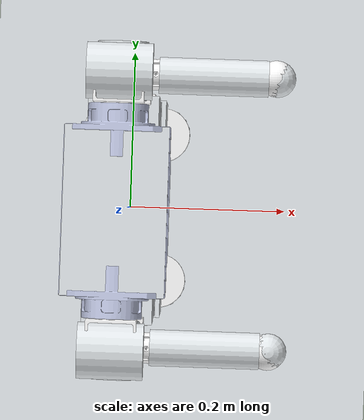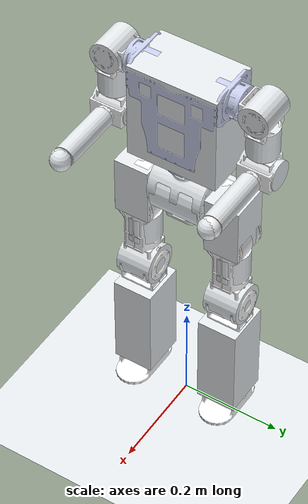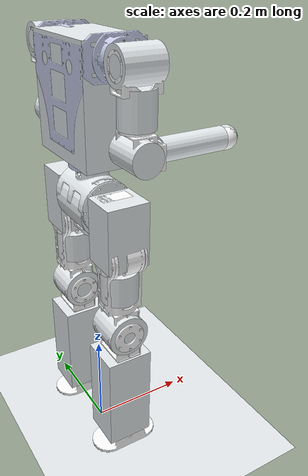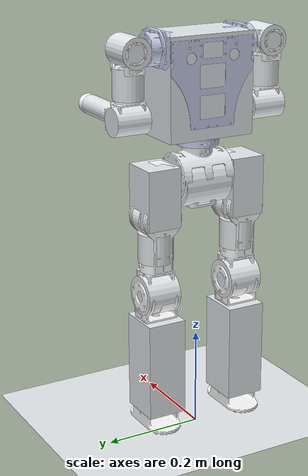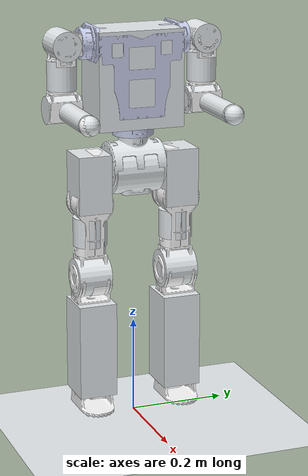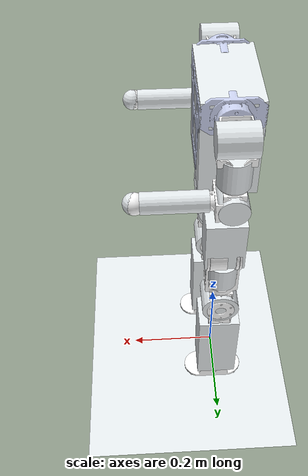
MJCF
<mujoco model="qinglongmini2.0">
    <compiler angle="radian" meshdir="../meshes/"/>
    <size njmax="500" nconmax="1000"/>
    <default>
        <light castshadow="false"/>
        <geom rgba="0.898 0.918 0.929 1"/>
        <default class="visual">
            <geom contype="0" conaffinity="0" group="0" type="mesh"/>
        </default>
        <default class="collision">
            <geom contype="1" conaffinity="1" friction="1.0 0.3 0.3"
                  margin="0" group="1"/>
        </default>
        <!-- Rotor inertia is not specified in the supplied motor manuals. -->
        <joint damping="0.1" frictionloss="0.02"/>
    </default>

    <asset>
        <mesh name="base_link" file="base_link.STL"/>
        <mesh name="right_hip_pitch_link" file="right_hip_pitch_link.STL"/>
        <mesh name="right_hip_roll_link" file="right_hip_roll_link.STL"/>
        <mesh name="right_hip_yaw_link" file="right_hip_yaw_link.STL"/>
        <mesh name="right_knee_link" file="right_knee_link.STL"/>
        <mesh name="right_foot" file="right_foot.STL"/>
        <mesh name="left_hip_pitch_link" file="left_hip_pitch_link.STL"/>
        <mesh name="left_hip_roll_link" file="left_hip_roll_link.STL"/>
        <mesh name="left_hip_yaw_link" file="left_hip_yaw_link.STL"/>
        <mesh name="left_knee_link" file="left_knee_link.STL"/>
        <mesh name="left_foot" file="left_foot.STL"/>
        <mesh name="waist_yaw_link" file="waist_yaw_link.STL"/>
        <mesh name="right_shoulder_pitch_link" file="right_shoulder_pitch_link.STL"/>
        <mesh name="right_shoulder_roll_link" file="right_shoulder_roll_link.STL"/>
        <mesh name="right_shoulder_yaw_link" file="right_shoulder_yaw_link.STL"/>
        <mesh name="right_elbow_link" file="right_elbow_link.STL"/>
        <mesh name="left_shoulder_pitch_link" file="left_shoulder_pitch_link.STL"/>
        <mesh name="left_shoulder_roll_link" file="left_shoulder_roll_link.STL"/>
        <mesh name="left_shoulder_yaw_link" file="left_shoulder_yaw_link.STL"/>
        <mesh name="left_elbow_link" file="left_elbow_link.STL"/>
    </asset>

    <worldbody>
        <!-- Coarse primitive collision bodies; dimensions are intended for later tuning. -->
        <body name="base_link" pos="0.00000000 0.00000000 0.48" quat="1 0 0 0">
            <joint name="floating_base_joint" type="free" limited="false" actuatorfrclimited="false"/>
            <inertial pos="-5.73678996165089E-06 -1.69193884976709E-05 0.058874742378733" quat="1.0 0.0 0.0 0.0"
                      mass="1.6520541" diaginertia="0.0032157 0.0019340 0.0028831"/>
            <geom class="visual" type="mesh" rgba="0.898 0.918 0.929 1" mesh="base_link"/>
            <geom name="base_link_collision" class="collision" type="cylinder" pos="0 0 0.05" size="0.05 0.05" euler="1.570796 0 0"/>
            <body name="right_hip_pitch_link" pos="0 -0.054017 0.059" quat="1.0 0.0 0.0 0.0">
                <joint name="right_hip_pitch_joint" range="-2.2689 2.2689" axis="0 1 0"/>
                <inertial pos="0.00335760201078564 -0.0373080226674996 -0.0624910254096332" quat="1.0 0.0 0.0 0.0"
                          mass="0.5798660" diaginertia="0.0008730 0.0007970 0.0003964"/>
                <geom class="visual" type="mesh" rgba="1 1 1 1" mesh="right_hip_pitch_link"/>
                <geom name="right_hip_pitch_link_collision" class="collision" type="box" pos="0.0 -0.04 -0.03" size="0.04 0.035 0.06"/>
                <body name="right_hip_roll_link" pos="0.00945 -0.04 -0.074" quat="1.0 0.0 0.0 0.0">
                    <joint name="right_hip_roll_joint" range="-1.0472 0.8727" axis="1 0 0"/>
                    <inertial pos="-0.0096013 -1.7563E-07 -0.060983" quat="1.0 0.0 0.0 0.0"
                              mass="0.5591978" diaginertia="0.0009817 0.0011193 0.0004282"/>
                    <geom class="visual" type="mesh" rgba="1 1 1 1" mesh="right_hip_roll_link"/>
                    <geom name="right_hip_roll_link_collision" class="collision" type="cylinder" pos="-0.01 0 -0.06" size="0.035 0.03"/>
                    <body name="right_hip_yaw_link" pos="-0.00945 0 -0.104" quat="1.0 0.0 0.0 0.0">
                        <joint name="right_hip_yaw_joint" range="-0.8727 0.8727" axis="0 0 1"/>
                        <inertial pos="-4.23390510687766E-06 0.00413396977649125 -0.0521520218910281" quat="1.0 0.0 0.0 0.0"
                                  mass="0.5211244" diaginertia="0.0003977 0.0004599 0.0003181"/>
                        <geom class="visual" type="mesh" rgba="1 1 1 1" mesh="right_hip_yaw_link"/>
                        <geom name="right_hip_yaw_link_collision" class="collision" type="cylinder" pos="0 0 -0.054" size="0.04 0.035" euler="1.570796 0 0"/>
                        <body name="right_knee_link" pos="0 0.00945 -0.056" quat="1.0 0.0 0.0 0.0">
                            <joint name="right_knee_joint" range="-0.1745 2.0499" axis="0 1 0"/>
                            <inertial pos="7.14113041347386E-06 -0.00774899527578245 -0.163319540342136" quat="1.0 0.0 0.0 0.0"
                                      mass="0.8775823" diaginertia="0.0076825 0.0076264 0.0006223"/>
                            <geom class="visual" type="mesh" rgba="1 1 1 1" mesh="right_knee_link"/>
                            <geom name="right_knee_link_collision" class="collision" type="box" pos="0 -0.008 -0.15" size="0.045 0.04 0.1"/>
                            <body name="right_foot" pos="0 0 -0.23" quat="1.0 0.0 0.0 0.0">
                                <joint name="right_foot_pitch_joint" range="-1.0472 1.0472" axis="0 1 0"/>
                                <inertial pos="0.00298442847510103 -0.00986247346418476 -0.025627500432694" quat="1.0 0.0 0.0 0.0"
                                          mass="0.251342026054478" diaginertia="0.000238056636333116 0.000301413035110417 0.000331563693288264"/>
                                <geom class="visual" type="mesh" rgba="1 1 1 1" mesh="right_foot"/>
                                <geom name="right_foot1_collision" class="collision" type="capsule" size="0.005" fromto="-0.046583 -0.035 -0.05 0.056583 -0.035 -0.05"/>
                                <geom name="right_foot2_collision" class="collision" type="capsule" size="0.005" fromto="-0.054944 -0.026667 -0.05 0.064944 -0.026667 -0.05"/>
                                <geom name="right_foot3_collision" class="collision" type="capsule" size="0.005" fromto="-0.058819 -0.018333 -0.05 0.068819 -0.018333 -0.05"/>
                                <geom name="right_foot4_collision" class="collision" type="capsule" size="0.005" fromto="-0.06 -0.01 -0.05 0.07 -0.01 -0.05"/>
                                <geom name="right_foot5_collision" class="collision" type="capsule" size="0.005" fromto="-0.058819 -0.001667 -0.05 0.068819 -0.001667 -0.05"/>
                                <geom name="right_foot6_collision" class="collision" type="capsule" size="0.005" fromto="-0.054944 0.006667 -0.05 0.064944 0.006667 -0.05"/>
                                <geom name="right_foot7_collision" class="collision" type="capsule" size="0.005" fromto="-0.046583 0.015 -0.05 0.056583 0.015 -0.05"/>
                                <site name="right_foot" pos="0.005 -0.01 -0.055" size="0.005"/>
                            </body>
                        </body>
                    </body>
                </body>
            </body>
            <body name="left_hip_pitch_link" pos="0 0.053983 0.059" quat="1.0 0.0 0.0 0.0">
                <joint name="left_hip_pitch_joint" range="-2.2689 2.2689" axis="0 1 0"/>
                <inertial pos="0.0033576 0.037308 -0.062491" quat="1.0 0.0 0.0 0.0"
                          mass="0.5798661" diaginertia="0.0008730 0.0007970 0.0003964"/>
                <geom class="visual" type="mesh" rgba="1 1 1 1" mesh="left_hip_pitch_link"/>
                <geom name="left_hip_pitch_link_collision" class="collision" type="box" pos="0.0 0.04 -0.03" size="0.04 0.035 0.06"/>
                <body name="left_hip_roll_link" pos="0.00945 0.04 -0.074" quat="1.0 0.0 0.0 0.0">
                    <joint name="left_hip_roll_joint" range="-0.8727 1.0472" axis="1 0 0"/>
                    <inertial pos="-0.00960126000015139 -1.75627821480395E-07 -0.0609829126488866" quat="1.0 0.0 0.0 0.0"
                              mass="0.5591978" diaginertia="0.0009821 0.0011189 0.0004282"/>
                    <geom class="visual" type="mesh" rgba="1 1 1 1" mesh="left_hip_roll_link"/>
                    <geom name="left_hip_roll_link_collision" class="collision" type="cylinder" pos="-0.01 0 -0.06" size="0.035 0.03"/>
                    <body name="left_hip_yaw_link" pos="-0.00945 0 -0.104" quat="1.0 0.0 0.0 0.0">
                        <joint name="left_hip_yaw_joint" range="-0.8727 0.8727" axis="0 0 1"/>
                        <inertial pos="1.8343574517167E-05 -0.00413396978427791 -0.0521438044149684" quat="1.0 0.0 0.0 0.0"
                                  mass="0.5211244" diaginertia="0.0003977 0.0004599 0.0003181"/>
                        <geom class="visual" type="mesh" rgba="1 1 1 1" mesh="left_hip_yaw_link"/>
                        <geom name="left_hip_yaw_link_collision" class="collision" type="cylinder" pos="0 0 -0.054" size="0.04 0.035" euler="1.570796 0 0"/>
                        <body name="left_knee_link" pos="0 -0.00945 -0.056" quat="1.0 0.0 0.0 0.0">
                            <joint name="left_knee_joint" range="-0.1745 2.0944" axis="0 1 0"/>
                            <inertial pos="6.3236898386887E-06 0.0077489947037703 -0.163324325687469" quat="1.0 0.0 0.0 0.0"
                                      mass="0.8775823" diaginertia="0.0076825 0.0076264 0.0006223"/>
                            <geom class="visual" type="mesh" rgba="1 1 1 1" mesh="left_knee_link"/>
                            <geom name="left_knee_link_collision" class="collision" type="box" pos="0 0.008 -0.15" size="0.045 0.04 0.1"/>
                            <body name="left_foot" pos="0 0 -0.23" quat="1.0 0.0 0.0 0.0">
                                <joint name="left_foot_pitch_joint" range="-1.0472 1.0472" axis="0 1 0"/>
                                <inertial pos="0.00298442754260854 0.00986282632621122 -0.0256275009097112" quat="1.0 0.0 0.0 0.0"
                                          mass="0.251342032302528" diaginertia="0.000238056567309221 0.000301413041828796 0.000331563627961346"/>
                                <geom class="visual" type="mesh" rgba="1 1 1 1" mesh="left_foot"/>
                                <!-- Mirrored rounded seven-strip sole; see right foot. -->
                                <geom name="left_foot1_collision" class="collision" type="capsule" size="0.005" fromto="-0.046583 0.035 -0.05 0.056583 0.035 -0.05"/>
                                <geom name="left_foot2_collision" class="collision" type="capsule" size="0.005" fromto="-0.054944 0.026667 -0.05 0.064944 0.026667 -0.05"/>
                                <geom name="left_foot3_collision" class="collision" type="capsule" size="0.005" fromto="-0.058819 0.018333 -0.05 0.068819 0.018333 -0.05"/>
                                <geom name="left_foot4_collision" class="collision" type="capsule" size="0.005" fromto="-0.06 0.01 -0.05 0.07 0.01 -0.05"/>
                                <geom name="left_foot5_collision" class="collision" type="capsule" size="0.005" fromto="-0.058819 0.001667 -0.05 0.068819 0.001667 -0.05"/>
                                <geom name="left_foot6_collision" class="collision" type="capsule" size="0.005" fromto="-0.054944 -0.006667 -0.05 0.064944 -0.006667 -0.05"/>
                                <geom name="left_foot7_collision" class="collision" type="capsule" size="0.005" fromto="-0.046583 -0.015 -0.05 0.056583 -0.015 -0.05"/>
                                <site name="left_foot" pos="0.005 0.01 -0.055" size="0.005"/>
                            </body>
                        </body>
                    </body>
                </body>
            </body>
            <body name="waist_yaw_link" pos="0 0 0.140558242606161" quat="1.0 0.0 0.0 0.0">
                <joint name="waist_yaw_joint" range="-0.8727 0.8727" axis="0 0 1"/>
                <inertial pos="-0.00048399 -0.0020022 0.10215" quat="1.0 0.0 0.0 0.0"
                          mass="3.6534181" diaginertia="0.0221606 0.0164459 0.0116163"/>
                <geom class="visual" type="mesh" rgba="0.792 0.820 0.933 1" mesh="waist_yaw_link"/>
                <geom name="waist_yaw_link_collision" class="collision" type="box" pos="0 0 0.10" size="0.055 0.09 0.1"/>
                <body name="right_shoulder_pitch_link" pos="0 -0.0881 0.17234" quat="1.0 0.0 0.0 0.0">
                    <joint name="right_shoulder_pitch_joint" range="-2.7925 2.7925" axis="0 1 0"/>
                    <inertial pos="-0.00210427996058867 -0.0585656923115873 -1.85446469039285E-05" quat="1.0 0.0 0.0 0.0"
                              mass="0.2947553" diaginertia="0.0001067 0.0001035 0.0001283"/>
                    <geom class="visual" type="mesh" rgba="1 1 1 1" mesh="right_shoulder_pitch_link"/>
                    <geom name="right_shoulder_pitch_link_collision" class="collision" type="cylinder" pos="0 -0.06 0" size="0.03 0.035" euler="0 1.570796 0"/>
                    <body name="right_shoulder_roll_link" pos="-0.0044996 -0.062176 -0.00015572" quat="1.0 0.0 0.0 0.0">
                        <joint name="right_shoulder_roll_joint" range="-3.2289 0.0873" axis="1 0 0"/>
                        <inertial pos="0.0041115542372811 0.000365350255664781 -0.0578635363052412" quat="1.0 0.0 0.0 0.0"
                                  mass="0.3485680" diaginertia="0.0003275 0.0003715 0.0001563"/>
                        <geom class="visual" type="mesh" rgba="1 1 1 1" mesh="right_shoulder_roll_link"/>
                        <geom name="right_shoulder_roll_link_collision" class="collision" type="cylinder" pos="0.005 0 -0.06" size="0.03 0.03"/>
                        <body name="right_shoulder_yaw_link" pos="0.0044996 0.00026128 -0.094639" quat="1.0 0.0 0.0 0.0">
                            <joint name="right_shoulder_yaw_joint" range="-2.9671 2.9671" axis="0 0 1"/>
                            <inertial pos="-8.56685334881674E-06 -0.00187746646855333 -0.0317422855661479" quat="1.0 0.0 0.0 0.0"
                                      mass="0.2995524" diaginertia="0.0001315 0.0001081 0.0001062"/>
                            <geom class="visual" type="mesh" rgba="1 1 1 1" mesh="right_shoulder_yaw_link"/>
                            <geom name="right_shoulder_yaw_link_collision" class="collision" type="cylinder" pos="0 0 -0.035" size="0.028 0.035" euler="1.570796 0 0"/>
                            <body name="right_elbow_link" pos="-0.00015572 -0.0043849 -0.034624" quat="1.0 0.0 0.0 0.0">
                                <joint name="right_elbow_joint" range="-0.1745 1.9199" axis="0 1 0"/>
                                <inertial pos="0.0786473480273473 0.00380297012793684 -0.000353678677222103" quat="1.0 0.0 0.0 0.0"
                                          mass="0.1977884" diaginertia="0.0000909 0.0008559 0.0009024"/>
                                <geom class="visual" type="mesh" rgba="1 1 1 1" mesh="right_elbow_link"/>
                                <geom name="right_elbow_link_collision" class="collision" type="cylinder" pos="0.1 0.005 0" size="0.02 0.06" euler="0 1.5708 0"/>
                                <geom name="right_elbow_link_collision2" class="collision" type="sphere" pos="0.17 0.005 0" size="0.02"/>
                            </body>
                        </body>
                    </body>
                </body>
                <body name="left_shoulder_pitch_link" pos="0 0.0881 0.17234" quat="1.0 0.0 0.0 0.0">
                    <joint name="left_shoulder_pitch_joint" range="-2.7925 2.7925" axis="0 1 0"/>
                    <inertial pos="-0.00210428325739485 0.0585226139172226 -7.07840754010647E-07" quat="1.0 0.0 0.0 0.0"
                              mass="0.2947554" diaginertia="0.0001066 0.0001035 0.0001282"/>
                    <geom class="visual" type="mesh" rgba="1 1 1 1" mesh="left_shoulder_pitch_link"/>
                    <geom name="left_shoulder_pitch_link_collision" class="collision" type="cylinder" pos="0 0.06 0" size="0.03 0.035" euler="0 1.570796 0"/>
                    <body name="left_shoulder_roll_link" pos="-0.0044996 0.061424 0.00015572" quat="1.0 0.0 0.0 0.0">
                        <joint name="left_shoulder_roll_joint" range="-0.0873 3.2289" axis="1 0 0"/>
                        <inertial pos="0.00412098513032669 0.000363759745852399 -0.0581749827430238" quat="1.0 0.0 0.0 0.0"
                                  mass="0.3485680" diaginertia="0.0003276 0.0003714 0.0001563"/>
                        <geom class="visual" type="mesh" rgba="1 1 1 1" mesh="left_shoulder_roll_link"/>
                        <geom name="left_shoulder_roll_link_collision" class="collision" type="cylinder" pos="0.005 0 -0.06" size="0.03 0.03"/>
                        <body name="left_shoulder_yaw_link" pos="0.0044996 0.00049061 -0.09495" quat="1.0 0.0 0.0 0.0">
                            <joint name="left_shoulder_yaw_joint" range="-2.9671 2.9671" axis="0 0 1"/>
                            <inertial pos="1.99648881145653E-05 0.00187745723766075 -0.0317708173076113" quat="1.0 0.0 0.0 0.0"
                                      mass="0.2995524" diaginertia="0.0001317 0.0001081 0.0001061"/>
                            <geom class="visual" type="mesh" rgba="1 1 1 1" mesh="left_shoulder_yaw_link"/>
                            <geom name="left_shoulder_yaw_link_collision" class="collision" type="cylinder" pos="0 0 -0.035" size="0.028 0.035" euler="1.570796 0 0"/>
                            <body name="left_elbow_link" pos="0.00037594 0.0043849 -0.035156" quat="1.0 0.0 0.0 0.0">
                                <joint name="left_elbow_joint" range="-0.1745 1.9199" axis="0 1 0"/>
                                <inertial pos="0.0781156956631344 -0.00380297588342884 0.000177982252860054" quat="1.0 0.0 0.0 0.0"
                                          mass="0.1977884" diaginertia="0.0000909 0.0008559 0.0009024"/>
                                <geom class="visual" type="mesh" rgba="1 1 1 1" mesh="left_elbow_link"/>
                                <geom name="left_elbow_link_collision" class="collision" type="cylinder" pos="0.1 -0.005 0" size="0.02 0.06" euler="0 1.5708 0"/>
                                <geom name="left_elbow_link_collision2" class="collision" type="sphere" pos="0.17 -0.005 0" size="0.02"/>
                            </body>
                        </body>
                    </body>
                </body>
            </body>
            <body name="imu_mount" pos="0 0 0.01" quat="1 0 0 0">
                <site name="base_link_site" pos="0 0 0" quat="1 0 0 0"/>
            </body>
            <camera name="front_camera" mode="track" fovy="90.0"
                    quat="4.329780281177467e-17 4.329780281177466e-17 0.7071067811865475 0.7071067811865476"
                    pos="0.0 2.0 0.5"/>
            <camera name="side_camera" mode="track" fovy="90.0" quat="-0.5 -0.4999999999999999 0.5 0.5000000000000001"
                    pos="-2.0 0.0 0.5"/>
        </body>
    </worldbody>

    <contact>
        <exclude body1="base_link" body2="right_hip_pitch_link"/>
        <exclude body1="right_hip_pitch_link" body2="right_hip_roll_link"/>
        <exclude body1="right_hip_roll_link" body2="right_hip_yaw_link"/>
        <exclude body1="right_hip_yaw_link" body2="right_knee_link"/>
        <exclude body1="right_knee_link" body2="right_foot"/>
        <exclude body1="base_link" body2="left_hip_pitch_link"/>
        <exclude body1="left_hip_pitch_link" body2="left_hip_roll_link"/>
        <exclude body1="left_hip_roll_link" body2="left_hip_yaw_link"/>
        <exclude body1="left_hip_yaw_link" body2="left_knee_link"/>
        <exclude body1="left_knee_link" body2="left_foot"/>
        <exclude body1="base_link" body2="waist_yaw_link"/>
        <exclude body1="waist_yaw_link" body2="right_shoulder_pitch_link"/>
        <exclude body1="right_shoulder_pitch_link" body2="right_shoulder_roll_link"/>
        <exclude body1="right_shoulder_roll_link" body2="right_shoulder_yaw_link"/>
        <exclude body1="right_shoulder_yaw_link" body2="right_elbow_link"/>
        <exclude body1="waist_yaw_link" body2="left_shoulder_pitch_link"/>
        <exclude body1="left_shoulder_pitch_link" body2="left_shoulder_roll_link"/>
        <exclude body1="left_shoulder_roll_link" body2="left_shoulder_yaw_link"/>
        <exclude body1="left_shoulder_yaw_link" body2="left_elbow_link"/>
    </contact>

    <sensor>
        <gyro name="imu_ang_vel" site="base_link_site"/>
        <velocimeter name="imu_lin_vel" site="base_link_site"/>
        <subtreeangmom name="root_angmom" body="base_link"/>
        <framepos name="base_link_site_pos" objtype="site" objname="base_link_site"/>
        <framequat name="base_link_site_quat" objtype="site" objname="base_link_site"/>
        <framelinvel name="base_link_site_linvel" objtype="site" objname="base_link_site"/>
        <frameangvel name="base_link_site_angvel" objtype="site" objname="base_link_site"/>
        <velocimeter name="base_link_site_vel" site="base_link_site"/>
    </sensor>
    <statistic center="1.0 0 1.0" extent="0.8"/>
    <visual>
        <headlight diffuse="0.6 0.6 0.6" ambient="0.1 0.1 0.1" specular="0.9 0.9 0.9"/>
        <rgba haze="0.15 0.25 0.35 1"/>
        <global azimuth="-140" elevation="-20"/>
    </visual>
    <asset>
        <texture type="skybox" builtin="flat" rgb1="0 0 0" rgb2="0 0 0" width="512" height="3072"/>
        <texture type="2d" name="groundplane" builtin="checker" mark="edge" rgb1="0.2 0.3 0.4" rgb2="0.1 0.2 0.3"
                 markrgb="0.8 0.8 0.8" width="300" height="300"/>
        <material name="groundplane" texture="groundplane" texuniform="true" texrepeat="5 5" reflectance="0.2"/>
    </asset>
    <worldbody>
        <light pos="1 0 3.5" dir="0 0 -1" directional="true"/>
        <geom name="floor" size="0 0 0.05" type="plane" material="groundplane"/>
    </worldbody>
</mujoco>
